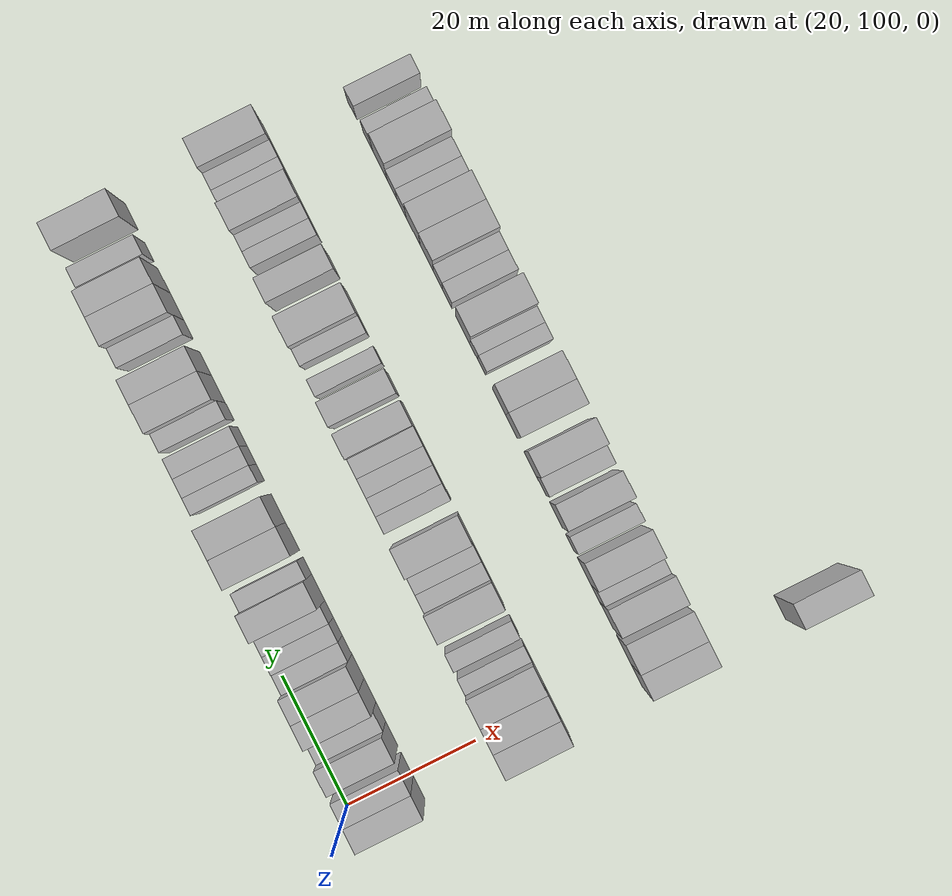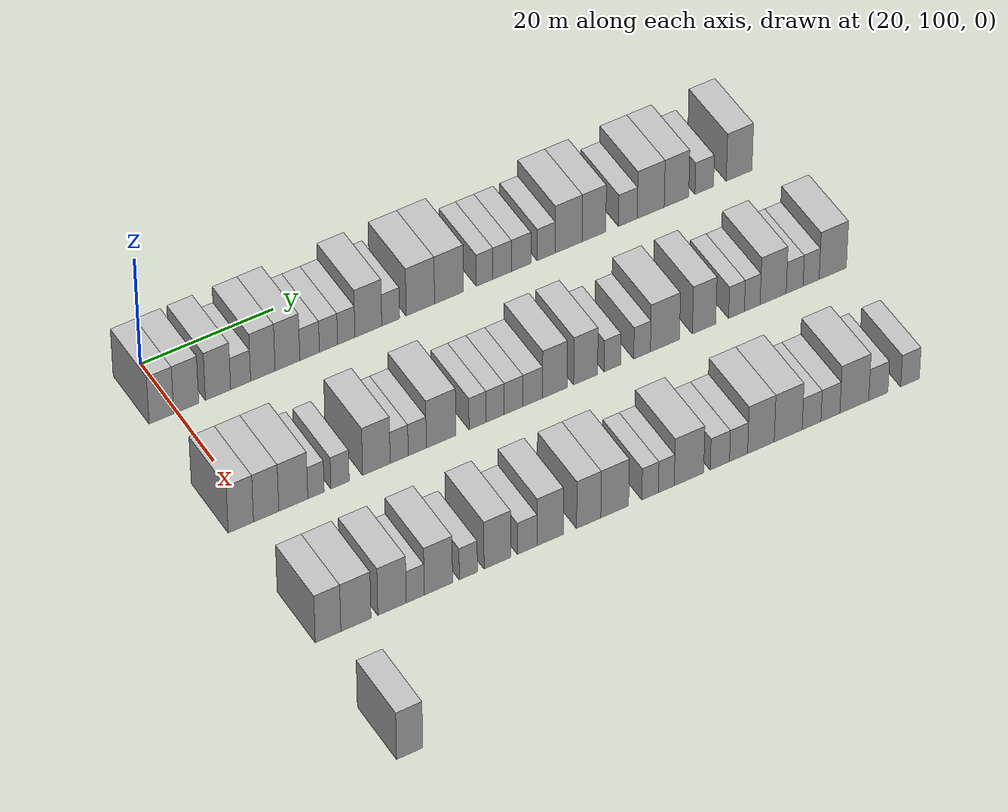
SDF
<sdf version="1.6">
 <world name="default">
  <model name="building_125">
   <static>1</static>
   <pose>25.0000 97.6541 0 0.000000 0.000000 0.000000</pose>
   <link name="link">
    <pose>0 0 4.50 0 0 0</pose>
    <collision name="collision"><geometry><box><size>10.0000 3.6621 9.0000</size></box></geometry></collision>
    <visual name="visual">
     <cast_shadows>0</cast_shadows>
     <geometry><box><size>10.0000 3.6621 9.0000</size></box></geometry>
     <material>
      <script>
       <uri>model://HANNAS_wall/materials/scripts</uri>
       <uri>model://HANNAS_wall/materials/textures</uri>
       <name>vrc/HANNAS_wall</name>
      </script>
     </material>
    </visual>
   </link>
  </model>
  <model name="building_126">
   <static>1</static>
   <pose>25.0000 101.3525 0 0.000000 0.000000 0.000000</pose>
   <link name="link">
    <pose>0 0 4.50 0 0 0</pose>
    <collision name="collision"><geometry><box><size>10.0000 3.7347 9.0000</size></box></geometry></collision>
    <visual name="visual">
     <cast_shadows>0</cast_shadows>
     <geometry><box><size>10.0000 3.7347 9.0000</size></box></geometry>
     <material>
      <script>
       <uri>model://HANNAS_wall/materials/scripts</uri>
       <uri>model://HANNAS_wall/materials/textures</uri>
       <name>vrc/HANNAS_wall</name>
      </script>
     </material>
    </visual>
   </link>
  </model>
  <model name="building_127">
   <static>1</static>
   <pose>25.0000 106.1117 0 0.000000 0.000000 0.000000</pose>
   <link name="link">
    <pose>0 0 4.50 0 0 0</pose>
    <collision name="collision"><geometry><box><size>10.0000 3.7838 9.0000</size></box></geometry></collision>
    <visual name="visual">
     <cast_shadows>0</cast_shadows>
     <geometry><box><size>10.0000 3.7838 9.0000</size></box></geometry>
     <material>
      <script>
       <uri>model://HANNAS_wall/materials/scripts</uri>
       <uri>model://HANNAS_wall/materials/textures</uri>
       <name>vrc/HANNAS_wall</name>
      </script>
     </material>
    </visual>
   </link>
  </model>
  <model name="building_128">
   <static>1</static>
   <pose>25.0000 109.4991 0 0.000000 0.000000 0.000000</pose>
   <link name="link">
    <pose>0 0 3.00 0 0 0</pose>
    <collision name="collision"><geometry><box><size>10.0000 2.9910 6.0000</size></box></geometry></collision>
    <visual name="visual">
     <cast_shadows>0</cast_shadows>
     <geometry><box><size>10.0000 2.9910 6.0000</size></box></geometry>
     <material>
      <script>
       <uri>model://HANNAS_wall/materials/scripts</uri>
       <uri>model://HANNAS_wall/materials/textures</uri>
       <name>vrc/HANNAS_wall</name>
      </script>
     </material>
    </visual>
   </link>
  </model>
  <model name="building_129">
   <static>1</static>
   <pose>25.0000 112.8402 0 0.000000 0.000000 0.000000</pose>
   <link name="link">
    <pose>0 0 4.50 0 0 0</pose>
    <collision name="collision"><geometry><box><size>10.0000 3.6911 9.0000</size></box></geometry></collision>
    <visual name="visual">
     <cast_shadows>0</cast_shadows>
     <geometry><box><size>10.0000 3.6911 9.0000</size></box></geometry>
     <material>
      <script>
       <uri>model://HANNAS_wall/materials/scripts</uri>
       <uri>model://HANNAS_wall/materials/textures</uri>
       <name>vrc/HANNAS_wall</name>
      </script>
     </material>
    </visual>
   </link>
  </model>
  <model name="building_130">
   <static>1</static>
   <pose>25.0000 116.5511 0 0.000000 0.000000 0.000000</pose>
   <link name="link">
    <pose>0 0 4.50 0 0 0</pose>
    <collision name="collision"><geometry><box><size>10.0000 3.7307 9.0000</size></box></geometry></collision>
    <visual name="visual">
     <cast_shadows>0</cast_shadows>
     <geometry><box><size>10.0000 3.7307 9.0000</size></box></geometry>
     <material>
      <script>
       <uri>model://HANNAS_wall/materials/scripts</uri>
       <uri>model://HANNAS_wall/materials/textures</uri>
       <name>vrc/HANNAS_wall</name>
      </script>
     </material>
    </visual>
   </link>
  </model>
  <model name="building_131">
   <static>1</static>
   <pose>25.0000 119.8964 0 0.000000 0.000000 0.000000</pose>
   <link name="link">
    <pose>0 0 3.00 0 0 0</pose>
    <collision name="collision"><geometry><box><size>10.0000 2.9599 6.0000</size></box></geometry></collision>
    <visual name="visual">
     <cast_shadows>0</cast_shadows>
     <geometry><box><size>10.0000 2.9599 6.0000</size></box></geometry>
     <material>
      <script>
       <uri>model://HANNAS_wall/materials/scripts</uri>
       <uri>model://HANNAS_wall/materials/textures</uri>
       <name>vrc/HANNAS_wall</name>
      </script>
     </material>
    </visual>
   </link>
  </model>
  <model name="building_132">
   <static>1</static>
   <pose>25.0000 122.7570 0 0.000000 0.000000 0.000000</pose>
   <link name="link">
    <pose>0 0 3.00 0 0 0</pose>
    <collision name="collision"><geometry><box><size>10.0000 2.7612 6.0000</size></box></geometry></collision>
    <visual name="visual">
     <cast_shadows>0</cast_shadows>
     <geometry><box><size>10.0000 2.7612 6.0000</size></box></geometry>
     <material>
      <script>
       <uri>model://HANNAS_wall/materials/scripts</uri>
       <uri>model://HANNAS_wall/materials/textures</uri>
       <name>vrc/HANNAS_wall</name>
      </script>
     </material>
    </visual>
   </link>
  </model>
  <model name="building_133">
   <static>1</static>
   <pose>25.0000 125.4511 0 0.000000 0.000000 0.000000</pose>
   <link name="link">
    <pose>0 0 3.00 0 0 0</pose>
    <collision name="collision"><geometry><box><size>10.0000 2.6270 6.0000</size></box></geometry></collision>
    <visual name="visual">
     <cast_shadows>0</cast_shadows>
     <geometry><box><size>10.0000 2.6270 6.0000</size></box></geometry>
     <material>
      <script>
       <uri>model://HANNAS_wall/materials/scripts</uri>
       <uri>model://HANNAS_wall/materials/textures</uri>
       <name>vrc/HANNAS_wall</name>
      </script>
     </material>
    </visual>
   </link>
  </model>
  <model name="building_134">
   <static>1</static>
   <pose>25.0000 128.8019 0 0.000000 0.000000 0.000000</pose>
   <link name="link">
    <pose>0 0 4.50 0 0 0</pose>
    <collision name="collision"><geometry><box><size>10.0000 4.0746 9.0000</size></box></geometry></collision>
    <visual name="visual">
     <cast_shadows>0</cast_shadows>
     <geometry><box><size>10.0000 4.0746 9.0000</size></box></geometry>
     <material>
      <script>
       <uri>model://HANNAS_wall/materials/scripts</uri>
       <uri>model://HANNAS_wall/materials/textures</uri>
       <name>vrc/HANNAS_wall</name>
      </script>
     </material>
    </visual>
   </link>
  </model>
  <model name="building_135">
   <static>1</static>
   <pose>25.0000 132.2038 0 0.000000 0.000000 0.000000</pose>
   <link name="link">
    <pose>0 0 3.00 0 0 0</pose>
    <collision name="collision"><geometry><box><size>10.0000 2.7292 6.0000</size></box></geometry></collision>
    <visual name="visual">
     <cast_shadows>0</cast_shadows>
     <geometry><box><size>10.0000 2.7292 6.0000</size></box></geometry>
     <material>
      <script>
       <uri>model://HANNAS_wall/materials/scripts</uri>
       <uri>model://HANNAS_wall/materials/textures</uri>
       <name>vrc/HANNAS_wall</name>
      </script>
     </material>
    </visual>
   </link>
  </model>
  <model name="building_136">
   <static>1</static>
   <pose>25.0000 136.7423 0 0.000000 0.000000 0.000000</pose>
   <link name="link">
    <pose>0 0 4.50 0 0 0</pose>
    <collision name="collision"><geometry><box><size>10.0000 4.3480 9.0000</size></box></geometry></collision>
    <visual name="visual">
     <cast_shadows>0</cast_shadows>
     <geometry><box><size>10.0000 4.3480 9.0000</size></box></geometry>
     <material>
      <script>
       <uri>model://HANNAS_wall/materials/scripts</uri>
       <uri>model://HANNAS_wall/materials/textures</uri>
       <name>vrc/HANNAS_wall</name>
      </script>
     </material>
    </visual>
   </link>
  </model>
  <model name="building_137">
   <static>1</static>
   <pose>25.0000 141.1375 0 0.000000 0.000000 0.000000</pose>
   <link name="link">
    <pose>0 0 4.50 0 0 0</pose>
    <collision name="collision"><geometry><box><size>10.0000 4.4422 9.0000</size></box></geometry></collision>
    <visual name="visual">
     <cast_shadows>0</cast_shadows>
     <geometry><box><size>10.0000 4.4422 9.0000</size></box></geometry>
     <material>
      <script>
       <uri>model://HANNAS_wall/materials/scripts</uri>
       <uri>model://HANNAS_wall/materials/textures</uri>
       <name>vrc/HANNAS_wall</name>
      </script>
     </material>
    </visual>
   </link>
  </model>
  <model name="building_138">
   <static>1</static>
   <pose>25.0000 146.6398 0 0.000000 0.000000 0.000000</pose>
   <link name="link">
    <pose>0 0 3.00 0 0 0</pose>
    <collision name="collision"><geometry><box><size>10.0000 2.5623 6.0000</size></box></geometry></collision>
    <visual name="visual">
     <cast_shadows>0</cast_shadows>
     <geometry><box><size>10.0000 2.5623 6.0000</size></box></geometry>
     <material>
      <script>
       <uri>model://HANNAS_wall/materials/scripts</uri>
       <uri>model://HANNAS_wall/materials/textures</uri>
       <name>vrc/HANNAS_wall</name>
      </script>
     </material>
    </visual>
   </link>
  </model>
  <model name="building_139">
   <static>1</static>
   <pose>25.0000 149.3485 0 0.000000 0.000000 0.000000</pose>
   <link name="link">
    <pose>0 0 3.00 0 0 0</pose>
    <collision name="collision"><geometry><box><size>10.0000 2.8551 6.0000</size></box></geometry></collision>
    <visual name="visual">
     <cast_shadows>0</cast_shadows>
     <geometry><box><size>10.0000 2.8551 6.0000</size></box></geometry>
     <material>
      <script>
       <uri>model://HANNAS_wall/materials/scripts</uri>
       <uri>model://HANNAS_wall/materials/textures</uri>
       <name>vrc/HANNAS_wall</name>
      </script>
     </material>
    </visual>
   </link>
  </model>
  <model name="building_140">
   <static>1</static>
   <pose>25.0000 152.2746 0 0.000000 0.000000 0.000000</pose>
   <link name="link">
    <pose>0 0 3.00 0 0 0</pose>
    <collision name="collision"><geometry><box><size>10.0000 2.9971 6.0000</size></box></geometry></collision>
    <visual name="visual">
     <cast_shadows>0</cast_shadows>
     <geometry><box><size>10.0000 2.9971 6.0000</size></box></geometry>
     <material>
      <script>
       <uri>model://HANNAS_wall/materials/scripts</uri>
       <uri>model://HANNAS_wall/materials/textures</uri>
       <name>vrc/HANNAS_wall</name>
      </script>
     </material>
    </visual>
   </link>
  </model>
  <model name="building_141">
   <static>1</static>
   <pose>25.0000 156.1682 0 0.000000 0.000000 0.000000</pose>
   <link name="link">
    <pose>0 0 3.00 0 0 0</pose>
    <collision name="collision"><geometry><box><size>10.0000 2.7902 6.0000</size></box></geometry></collision>
    <visual name="visual">
     <cast_shadows>0</cast_shadows>
     <geometry><box><size>10.0000 2.7902 6.0000</size></box></geometry>
     <material>
      <script>
       <uri>model://HANNAS_wall/materials/scripts</uri>
       <uri>model://HANNAS_wall/materials/textures</uri>
       <name>vrc/HANNAS_wall</name>
      </script>
     </material>
    </visual>
   </link>
  </model>
  <model name="building_142">
   <static>1</static>
   <pose>25.0000 159.6718 0 0.000000 0.000000 0.000000</pose>
   <link name="link">
    <pose>0 0 4.50 0 0 0</pose>
    <collision name="collision"><geometry><box><size>10.0000 4.2171 9.0000</size></box></geometry></collision>
    <visual name="visual">
     <cast_shadows>0</cast_shadows>
     <geometry><box><size>10.0000 4.2171 9.0000</size></box></geometry>
     <material>
      <script>
       <uri>model://HANNAS_wall/materials/scripts</uri>
       <uri>model://HANNAS_wall/materials/textures</uri>
       <name>vrc/HANNAS_wall</name>
      </script>
     </material>
    </visual>
   </link>
  </model>
  <model name="building_143">
   <static>1</static>
   <pose>25.0000 163.6159 0 0.000000 0.000000 0.000000</pose>
   <link name="link">
    <pose>0 0 4.50 0 0 0</pose>
    <collision name="collision"><geometry><box><size>10.0000 3.6709 9.0000</size></box></geometry></collision>
    <visual name="visual">
     <cast_shadows>0</cast_shadows>
     <geometry><box><size>10.0000 3.6709 9.0000</size></box></geometry>
     <material>
      <script>
       <uri>model://HANNAS_wall/materials/scripts</uri>
       <uri>model://HANNAS_wall/materials/textures</uri>
       <name>vrc/HANNAS_wall</name>
      </script>
     </material>
    </visual>
   </link>
  </model>
  <model name="building_144">
   <static>1</static>
   <pose>25.0000 168.9212 0 0.000000 0.000000 0.000000</pose>
   <link name="link">
    <pose>0 0 3.00 0 0 0</pose>
    <collision name="collision"><geometry><box><size>10.0000 2.9397 6.0000</size></box></geometry></collision>
    <visual name="visual">
     <cast_shadows>0</cast_shadows>
     <geometry><box><size>10.0000 2.9397 6.0000</size></box></geometry>
     <material>
      <script>
       <uri>model://HANNAS_wall/materials/scripts</uri>
       <uri>model://HANNAS_wall/materials/textures</uri>
       <name>vrc/HANNAS_wall</name>
      </script>
     </material>
    </visual>
   </link>
  </model>
  <model name="building_145">
   <static>1</static>
   <pose>25.0000 172.5089 0 0.000000 0.000000 0.000000</pose>
   <link name="link">
    <pose>0 0 4.50 0 0 0</pose>
    <collision name="collision"><geometry><box><size>10.0000 4.2358 9.0000</size></box></geometry></collision>
    <visual name="visual">
     <cast_shadows>0</cast_shadows>
     <geometry><box><size>10.0000 4.2358 9.0000</size></box></geometry>
     <material>
      <script>
       <uri>model://HANNAS_wall/materials/scripts</uri>
       <uri>model://HANNAS_wall/materials/textures</uri>
       <name>vrc/HANNAS_wall</name>
      </script>
     </material>
    </visual>
   </link>
  </model>
  <model name="building_146">
   <static>1</static>
   <pose>25.0000 176.5602 0 0.000000 0.000000 0.000000</pose>
   <link name="link">
    <pose>0 0 4.50 0 0 0</pose>
    <collision name="collision"><geometry><box><size>10.0000 3.8667 9.0000</size></box></geometry></collision>
    <visual name="visual">
     <cast_shadows>0</cast_shadows>
     <geometry><box><size>10.0000 3.8667 9.0000</size></box></geometry>
     <material>
      <script>
       <uri>model://HANNAS_wall/materials/scripts</uri>
       <uri>model://HANNAS_wall/materials/textures</uri>
       <name>vrc/HANNAS_wall</name>
      </script>
     </material>
    </visual>
   </link>
  </model>
  <model name="building_147">
   <static>1</static>
   <pose>25.0000 180.9639 0 0.000000 0.000000 0.000000</pose>
   <link name="link">
    <pose>0 0 3.00 0 0 0</pose>
    <collision name="collision"><geometry><box><size>10.0000 2.9408 6.0000</size></box></geometry></collision>
    <visual name="visual">
     <cast_shadows>0</cast_shadows>
     <geometry><box><size>10.0000 2.9408 6.0000</size></box></geometry>
     <material>
      <script>
       <uri>model://HANNAS_wall/materials/scripts</uri>
       <uri>model://HANNAS_wall/materials/textures</uri>
       <name>vrc/HANNAS_wall</name>
      </script>
     </material>
    </visual>
   </link>
  </model>
  <model name="building_148">
   <static>1</static>
   <pose>25.0000 186.4819 0 0.000000 0.000000 0.000000</pose>
   <link name="link">
    <pose>0 0 4.50 0 0 0</pose>
    <collision name="collision"><geometry><box><size>10.0000 4.0953 9.0000</size></box></geometry></collision>
    <visual name="visual">
     <cast_shadows>0</cast_shadows>
     <geometry><box><size>10.0000 4.0953 9.0000</size></box></geometry>
     <material>
      <script>
       <uri>model://HANNAS_wall/materials/scripts</uri>
       <uri>model://HANNAS_wall/materials/textures</uri>
       <name>vrc/HANNAS_wall</name>
      </script>
     </material>
    </visual>
   </link>
  </model>
  <model name="building_322">
   <static>1</static>
   <pose>47.0000 97.4801 0 0.000000 0.000000 0.000000</pose>
   <link name="link">
    <pose>0 0 4.50 0 0 0</pose>
    <collision name="collision"><geometry><box><size>10.0000 3.7244 9.0000</size></box></geometry></collision>
    <visual name="visual">
     <cast_shadows>0</cast_shadows>
     <geometry><box><size>10.0000 3.7244 9.0000</size></box></geometry>
     <material>
      <script>
       <uri>model://HANNAS_wall/materials/scripts</uri>
       <uri>model://HANNAS_wall/materials/textures</uri>
       <name>vrc/HANNAS_wall</name>
      </script>
     </material>
    </visual>
   </link>
  </model>
  <model name="building_323">
   <static>1</static>
   <pose>47.0000 101.2134 0 0.000000 0.000000 0.000000</pose>
   <link name="link">
    <pose>0 0 4.50 0 0 0</pose>
    <collision name="collision"><geometry><box><size>10.0000 3.7421 9.0000</size></box></geometry></collision>
    <visual name="visual">
     <cast_shadows>0</cast_shadows>
     <geometry><box><size>10.0000 3.7421 9.0000</size></box></geometry>
     <material>
      <script>
       <uri>model://HANNAS_wall/materials/scripts</uri>
       <uri>model://HANNAS_wall/materials/textures</uri>
       <name>vrc/HANNAS_wall</name>
      </script>
     </material>
    </visual>
   </link>
  </model>
  <model name="building_324">
   <static>1</static>
   <pose>47.0000 105.2328 0 0.000000 0.000000 0.000000</pose>
   <link name="link">
    <pose>0 0 4.50 0 0 0</pose>
    <collision name="collision"><geometry><box><size>10.0000 4.2967 9.0000</size></box></geometry></collision>
    <visual name="visual">
     <cast_shadows>0</cast_shadows>
     <geometry><box><size>10.0000 4.2967 9.0000</size></box></geometry>
     <material>
      <script>
       <uri>model://HANNAS_wall/materials/scripts</uri>
       <uri>model://HANNAS_wall/materials/textures</uri>
       <name>vrc/HANNAS_wall</name>
      </script>
     </material>
    </visual>
   </link>
  </model>
  <model name="building_325">
   <static>1</static>
   <pose>47.0000 108.5959 0 0.000000 0.000000 0.000000</pose>
   <link name="link">
    <pose>0 0 3.00 0 0 0</pose>
    <collision name="collision"><geometry><box><size>10.0000 2.4295 6.0000</size></box></geometry></collision>
    <visual name="visual">
     <cast_shadows>0</cast_shadows>
     <geometry><box><size>10.0000 2.4295 6.0000</size></box></geometry>
     <material>
      <script>
       <uri>model://HANNAS_wall/materials/scripts</uri>
       <uri>model://HANNAS_wall/materials/textures</uri>
       <name>vrc/HANNAS_wall</name>
      </script>
     </material>
    </visual>
   </link>
  </model>
  <model name="building_326">
   <static>1</static>
   <pose>47.0000 112.1719 0 0.000000 0.000000 0.000000</pose>
   <link name="link">
    <pose>0 0 3.00 0 0 0</pose>
    <collision name="collision"><geometry><box><size>10.0000 2.7225 6.0000</size></box></geometry></collision>
    <visual name="visual">
     <cast_shadows>0</cast_shadows>
     <geometry><box><size>10.0000 2.7225 6.0000</size></box></geometry>
     <material>
      <script>
       <uri>model://HANNAS_wall/materials/scripts</uri>
       <uri>model://HANNAS_wall/materials/textures</uri>
       <name>vrc/HANNAS_wall</name>
      </script>
     </material>
    </visual>
   </link>
  </model>
  <model name="building_327">
   <static>1</static>
   <pose>47.0000 117.5928 0 0.000000 0.000000 0.000000</pose>
   <link name="link">
    <pose>0 0 4.50 0 0 0</pose>
    <collision name="collision"><geometry><box><size>10.0000 4.1192 9.0000</size></box></geometry></collision>
    <visual name="visual">
     <cast_shadows>0</cast_shadows>
     <geometry><box><size>10.0000 4.1192 9.0000</size></box></geometry>
     <material>
      <script>
       <uri>model://HANNAS_wall/materials/scripts</uri>
       <uri>model://HANNAS_wall/materials/textures</uri>
       <name>vrc/HANNAS_wall</name>
      </script>
     </material>
    </visual>
   </link>
  </model>
  <model name="building_328">
   <static>1</static>
   <pose>47.0000 121.0039 0 0.000000 0.000000 0.000000</pose>
   <link name="link">
    <pose>0 0 3.00 0 0 0</pose>
    <collision name="collision"><geometry><box><size>10.0000 2.7030 6.0000</size></box></geometry></collision>
    <visual name="visual">
     <cast_shadows>0</cast_shadows>
     <geometry><box><size>10.0000 2.7030 6.0000</size></box></geometry>
     <material>
      <script>
       <uri>model://HANNAS_wall/materials/scripts</uri>
       <uri>model://HANNAS_wall/materials/textures</uri>
       <name>vrc/HANNAS_wall</name>
      </script>
     </material>
    </visual>
   </link>
  </model>
  <model name="building_329">
   <static>1</static>
   <pose>47.0000 123.7179 0 0.000000 0.000000 0.000000</pose>
   <link name="link">
    <pose>0 0 3.00 0 0 0</pose>
    <collision name="collision"><geometry><box><size>10.0000 2.7250 6.0000</size></box></geometry></collision>
    <visual name="visual">
     <cast_shadows>0</cast_shadows>
     <geometry><box><size>10.0000 2.7250 6.0000</size></box></geometry>
     <material>
      <script>
       <uri>model://HANNAS_wall/materials/scripts</uri>
       <uri>model://HANNAS_wall/materials/textures</uri>
       <name>vrc/HANNAS_wall</name>
      </script>
     </material>
    </visual>
   </link>
  </model>
  <model name="building_330">
   <static>1</static>
   <pose>47.0000 127.2984 0 0.000000 0.000000 0.000000</pose>
   <link name="link">
    <pose>0 0 4.50 0 0 0</pose>
    <collision name="collision"><geometry><box><size>10.0000 4.4359 9.0000</size></box></geometry></collision>
    <visual name="visual">
     <cast_shadows>0</cast_shadows>
     <geometry><box><size>10.0000 4.4359 9.0000</size></box></geometry>
     <material>
      <script>
       <uri>model://HANNAS_wall/materials/scripts</uri>
       <uri>model://HANNAS_wall/materials/textures</uri>
       <name>vrc/HANNAS_wall</name>
      </script>
     </material>
    </visual>
   </link>
  </model>
  <model name="building_331">
   <static>1</static>
   <pose>47.0000 132.8037 0 0.000000 0.000000 0.000000</pose>
   <link name="link">
    <pose>0 0 3.00 0 0 0</pose>
    <collision name="collision"><geometry><box><size>10.0000 2.5748 6.0000</size></box></geometry></collision>
    <visual name="visual">
     <cast_shadows>0</cast_shadows>
     <geometry><box><size>10.0000 2.5748 6.0000</size></box></geometry>
     <material>
      <script>
       <uri>model://HANNAS_wall/materials/scripts</uri>
       <uri>model://HANNAS_wall/materials/textures</uri>
       <name>vrc/HANNAS_wall</name>
      </script>
     </material>
    </visual>
   </link>
  </model>
  <model name="building_332">
   <static>1</static>
   <pose>47.0000 135.4750 0 0.000000 0.000000 0.000000</pose>
   <link name="link">
    <pose>0 0 3.00 0 0 0</pose>
    <collision name="collision"><geometry><box><size>10.0000 2.7679 6.0000</size></box></geometry></collision>
    <visual name="visual">
     <cast_shadows>0</cast_shadows>
     <geometry><box><size>10.0000 2.7679 6.0000</size></box></geometry>
     <material>
      <script>
       <uri>model://HANNAS_wall/materials/scripts</uri>
       <uri>model://HANNAS_wall/materials/textures</uri>
       <name>vrc/HANNAS_wall</name>
      </script>
     </material>
    </visual>
   </link>
  </model>
  <model name="building_333">
   <static>1</static>
   <pose>47.0000 138.2911 0 0.000000 0.000000 0.000000</pose>
   <link name="link">
    <pose>0 0 3.00 0 0 0</pose>
    <collision name="collision"><geometry><box><size>10.0000 2.8643 6.0000</size></box></geometry></collision>
    <visual name="visual">
     <cast_shadows>0</cast_shadows>
     <geometry><box><size>10.0000 2.8643 6.0000</size></box></geometry>
     <material>
      <script>
       <uri>model://HANNAS_wall/materials/scripts</uri>
       <uri>model://HANNAS_wall/materials/textures</uri>
       <name>vrc/HANNAS_wall</name>
      </script>
     </material>
    </visual>
   </link>
  </model>
  <model name="building_334">
   <static>1</static>
   <pose>47.0000 141.2081 0 0.000000 0.000000 0.000000</pose>
   <link name="link">
    <pose>0 0 3.00 0 0 0</pose>
    <collision name="collision"><geometry><box><size>10.0000 2.9696 6.0000</size></box></geometry></collision>
    <visual name="visual">
     <cast_shadows>0</cast_shadows>
     <geometry><box><size>10.0000 2.9696 6.0000</size></box></geometry>
     <material>
      <script>
       <uri>model://HANNAS_wall/materials/scripts</uri>
       <uri>model://HANNAS_wall/materials/textures</uri>
       <name>vrc/HANNAS_wall</name>
      </script>
     </material>
    </visual>
   </link>
  </model>
  <model name="building_335">
   <static>1</static>
   <pose>47.0000 144.5632 0 0.000000 0.000000 0.000000</pose>
   <link name="link">
    <pose>0 0 4.50 0 0 0</pose>
    <collision name="collision"><geometry><box><size>10.0000 3.7406 9.0000</size></box></geometry></collision>
    <visual name="visual">
     <cast_shadows>0</cast_shadows>
     <geometry><box><size>10.0000 3.7406 9.0000</size></box></geometry>
     <material>
      <script>
       <uri>model://HANNAS_wall/materials/scripts</uri>
       <uri>model://HANNAS_wall/materials/textures</uri>
       <name>vrc/HANNAS_wall</name>
      </script>
     </material>
    </visual>
   </link>
  </model>
  <model name="building_336">
   <static>1</static>
   <pose>47.0000 149.2613 0 0.000000 0.000000 0.000000</pose>
   <link name="link">
    <pose>0 0 4.50 0 0 0</pose>
    <collision name="collision"><geometry><box><size>10.0000 3.6557 9.0000</size></box></geometry></collision>
    <visual name="visual">
     <cast_shadows>0</cast_shadows>
     <geometry><box><size>10.0000 3.6557 9.0000</size></box></geometry>
     <material>
      <script>
       <uri>model://HANNAS_wall/materials/scripts</uri>
       <uri>model://HANNAS_wall/materials/textures</uri>
       <name>vrc/HANNAS_wall</name>
      </script>
     </material>
    </visual>
   </link>
  </model>
  <model name="building_337">
   <static>1</static>
   <pose>47.0000 153.3697 0 0.000000 0.000000 0.000000</pose>
   <link name="link">
    <pose>0 0 3.00 0 0 0</pose>
    <collision name="collision"><geometry><box><size>10.0000 2.5610 6.0000</size></box></geometry></collision>
    <visual name="visual">
     <cast_shadows>0</cast_shadows>
     <geometry><box><size>10.0000 2.5610 6.0000</size></box></geometry>
     <material>
      <script>
       <uri>model://HANNAS_wall/materials/scripts</uri>
       <uri>model://HANNAS_wall/materials/textures</uri>
       <name>vrc/HANNAS_wall</name>
      </script>
     </material>
    </visual>
   </link>
  </model>
  <model name="building_338">
   <static>1</static>
   <pose>47.0000 157.9373 0 0.000000 0.000000 0.000000</pose>
   <link name="link">
    <pose>0 0 3.00 0 0 0</pose>
    <collision name="collision"><geometry><box><size>10.0000 2.5742 6.0000</size></box></geometry></collision>
    <visual name="visual">
     <cast_shadows>0</cast_shadows>
     <geometry><box><size>10.0000 2.5742 6.0000</size></box></geometry>
     <material>
      <script>
       <uri>model://HANNAS_wall/materials/scripts</uri>
       <uri>model://HANNAS_wall/materials/textures</uri>
       <name>vrc/HANNAS_wall</name>
      </script>
     </material>
    </visual>
   </link>
  </model>
  <model name="building_339">
   <static>1</static>
   <pose>47.0000 161.4658 0 0.000000 0.000000 0.000000</pose>
   <link name="link">
    <pose>0 0 4.50 0 0 0</pose>
    <collision name="collision"><geometry><box><size>10.0000 4.4826 9.0000</size></box></geometry></collision>
    <visual name="visual">
     <cast_shadows>0</cast_shadows>
     <geometry><box><size>10.0000 4.4826 9.0000</size></box></geometry>
     <material>
      <script>
       <uri>model://HANNAS_wall/materials/scripts</uri>
       <uri>model://HANNAS_wall/materials/textures</uri>
       <name>vrc/HANNAS_wall</name>
      </script>
     </material>
    </visual>
   </link>
  </model>
  <model name="building_340">
   <static>1</static>
   <pose>47.0000 167.5269 0 0.000000 0.000000 0.000000</pose>
   <link name="link">
    <pose>0 0 4.50 0 0 0</pose>
    <collision name="collision"><geometry><box><size>10.0000 3.6396 9.0000</size></box></geometry></collision>
    <visual name="visual">
     <cast_shadows>0</cast_shadows>
     <geometry><box><size>10.0000 3.6396 9.0000</size></box></geometry>
     <material>
      <script>
       <uri>model://HANNAS_wall/materials/scripts</uri>
       <uri>model://HANNAS_wall/materials/textures</uri>
       <name>vrc/HANNAS_wall</name>
      </script>
     </material>
    </visual>
   </link>
  </model>
  <model name="building_341">
   <static>1</static>
   <pose>47.0000 172.5779 0 0.000000 0.000000 0.000000</pose>
   <link name="link">
    <pose>0 0 3.00 0 0 0</pose>
    <collision name="collision"><geometry><box><size>10.0000 2.4624 6.0000</size></box></geometry></collision>
    <visual name="visual">
     <cast_shadows>0</cast_shadows>
     <geometry><box><size>10.0000 2.4624 6.0000</size></box></geometry>
     <material>
      <script>
       <uri>model://HANNAS_wall/materials/scripts</uri>
       <uri>model://HANNAS_wall/materials/textures</uri>
       <name>vrc/HANNAS_wall</name>
      </script>
     </material>
    </visual>
   </link>
  </model>
  <model name="building_342">
   <static>1</static>
   <pose>47.0000 175.0338 0 0.000000 0.000000 0.000000</pose>
   <link name="link">
    <pose>0 0 3.00 0 0 0</pose>
    <collision name="collision"><geometry><box><size>10.0000 2.4494 6.0000</size></box></geometry></collision>
    <visual name="visual">
     <cast_shadows>0</cast_shadows>
     <geometry><box><size>10.0000 2.4494 6.0000</size></box></geometry>
     <material>
      <script>
       <uri>model://HANNAS_wall/materials/scripts</uri>
       <uri>model://HANNAS_wall/materials/textures</uri>
       <name>vrc/HANNAS_wall</name>
      </script>
     </material>
    </visual>
   </link>
  </model>
  <model name="building_343">
   <static>1</static>
   <pose>47.0000 178.3016 0 0.000000 0.000000 0.000000</pose>
   <link name="link">
    <pose>0 0 4.50 0 0 0</pose>
    <collision name="collision"><geometry><box><size>10.0000 4.0861 9.0000</size></box></geometry></collision>
    <visual name="visual">
     <cast_shadows>0</cast_shadows>
     <geometry><box><size>10.0000 4.0861 9.0000</size></box></geometry>
     <material>
      <script>
       <uri>model://HANNAS_wall/materials/scripts</uri>
       <uri>model://HANNAS_wall/materials/textures</uri>
       <name>vrc/HANNAS_wall</name>
      </script>
     </material>
    </visual>
   </link>
  </model>
  <model name="building_344">
   <static>1</static>
   <pose>47.0000 181.6689 0 0.000000 0.000000 0.000000</pose>
   <link name="link">
    <pose>0 0 3.00 0 0 0</pose>
    <collision name="collision"><geometry><box><size>10.0000 2.6485 6.0000</size></box></geometry></collision>
    <visual name="visual">
     <cast_shadows>0</cast_shadows>
     <geometry><box><size>10.0000 2.6485 6.0000</size></box></geometry>
     <material>
      <script>
       <uri>model://HANNAS_wall/materials/scripts</uri>
       <uri>model://HANNAS_wall/materials/textures</uri>
       <name>vrc/HANNAS_wall</name>
      </script>
     </material>
    </visual>
   </link>
  </model>
  <model name="building_345">
   <static>1</static>
   <pose>47.0000 184.2580 0 0.000000 0.000000 0.000000</pose>
   <link name="link">
    <pose>0 0 3.00 0 0 0</pose>
    <collision name="collision"><geometry><box><size>10.0000 2.5297 6.0000</size></box></geometry></collision>
    <visual name="visual">
     <cast_shadows>0</cast_shadows>
     <geometry><box><size>10.0000 2.5297 6.0000</size></box></geometry>
     <material>
      <script>
       <uri>model://HANNAS_wall/materials/scripts</uri>
       <uri>model://HANNAS_wall/materials/textures</uri>
       <name>vrc/HANNAS_wall</name>
      </script>
     </material>
    </visual>
   </link>
  </model>
  <model name="building_346">
   <static>1</static>
   <pose>47.0000 187.6669 0 0.000000 0.000000 0.000000</pose>
   <link name="link">
    <pose>0 0 4.50 0 0 0</pose>
    <collision name="collision"><geometry><box><size>10.0000 4.2880 9.0000</size></box></geometry></collision>
    <visual name="visual">
     <cast_shadows>0</cast_shadows>
     <geometry><box><size>10.0000 4.2880 9.0000</size></box></geometry>
     <material>
      <script>
       <uri>model://HANNAS_wall/materials/scripts</uri>
       <uri>model://HANNAS_wall/materials/textures</uri>
       <name>vrc/HANNAS_wall</name>
      </script>
     </material>
    </visual>
   </link>
  </model>
  <model name="building_510">
   <static>1</static>
   <pose>69.0000 98.0909 0 0.000000 0.000000 0.000000</pose>
   <link name="link">
    <pose>0 0 4.50 0 0 0</pose>
    <collision name="collision"><geometry><box><size>10.0000 3.7430 9.0000</size></box></geometry></collision>
    <visual name="visual">
     <cast_shadows>0</cast_shadows>
     <geometry><box><size>10.0000 3.7430 9.0000</size></box></geometry>
     <material>
      <script>
       <uri>model://HANNAS_wall/materials/scripts</uri>
       <uri>model://HANNAS_wall/materials/textures</uri>
       <name>vrc/HANNAS_wall</name>
      </script>
     </material>
    </visual>
   </link>
  </model>
  <model name="building_511">
   <static>1</static>
   <pose>69.0000 102.1666 0 0.000000 0.000000 0.000000</pose>
   <link name="link">
    <pose>0 0 4.50 0 0 0</pose>
    <collision name="collision"><geometry><box><size>10.0000 4.4084 9.0000</size></box></geometry></collision>
    <visual name="visual">
     <cast_shadows>0</cast_shadows>
     <geometry><box><size>10.0000 4.4084 9.0000</size></box></geometry>
     <material>
      <script>
       <uri>model://HANNAS_wall/materials/scripts</uri>
       <uri>model://HANNAS_wall/materials/textures</uri>
       <name>vrc/HANNAS_wall</name>
      </script>
     </material>
    </visual>
   </link>
  </model>
  <model name="building_512">
   <static>1</static>
   <pose>69.0000 107.4595 0 0.000000 0.000000 0.000000</pose>
   <link name="link">
    <pose>0 0 4.50 0 0 0</pose>
    <collision name="collision"><geometry><box><size>10.0000 4.1776 9.0000</size></box></geometry></collision>
    <visual name="visual">
     <cast_shadows>0</cast_shadows>
     <geometry><box><size>10.0000 4.1776 9.0000</size></box></geometry>
     <material>
      <script>
       <uri>model://HANNAS_wall/materials/scripts</uri>
       <uri>model://HANNAS_wall/materials/textures</uri>
       <name>vrc/HANNAS_wall</name>
      </script>
     </material>
    </visual>
   </link>
  </model>
  <model name="building_513">
   <static>1</static>
   <pose>69.0000 110.8711 0 0.000000 0.000000 0.000000</pose>
   <link name="link">
    <pose>0 0 3.00 0 0 0</pose>
    <collision name="collision"><geometry><box><size>10.0000 2.6455 6.0000</size></box></geometry></collision>
    <visual name="visual">
     <cast_shadows>0</cast_shadows>
     <geometry><box><size>10.0000 2.6455 6.0000</size></box></geometry>
     <material>
      <script>
       <uri>model://HANNAS_wall/materials/scripts</uri>
       <uri>model://HANNAS_wall/materials/textures</uri>
       <name>vrc/HANNAS_wall</name>
      </script>
     </material>
    </visual>
   </link>
  </model>
  <model name="building_514">
   <static>1</static>
   <pose>69.0000 114.2826 0 0.000000 0.000000 0.000000</pose>
   <link name="link">
    <pose>0 0 4.50 0 0 0</pose>
    <collision name="collision"><geometry><box><size>10.0000 4.1774 9.0000</size></box></geometry></collision>
    <visual name="visual">
     <cast_shadows>0</cast_shadows>
     <geometry><box><size>10.0000 4.1774 9.0000</size></box></geometry>
     <material>
      <script>
       <uri>model://HANNAS_wall/materials/scripts</uri>
       <uri>model://HANNAS_wall/materials/textures</uri>
       <name>vrc/HANNAS_wall</name>
      </script>
     </material>
    </visual>
   </link>
  </model>
  <model name="building_515">
   <static>1</static>
   <pose>69.0000 118.7097 0 0.000000 0.000000 0.000000</pose>
   <link name="link">
    <pose>0 0 3.00 0 0 0</pose>
    <collision name="collision"><geometry><box><size>10.0000 2.6767 6.0000</size></box></geometry></collision>
    <visual name="visual">
     <cast_shadows>0</cast_shadows>
     <geometry><box><size>10.0000 2.6767 6.0000</size></box></geometry>
     <material>
      <script>
       <uri>model://HANNAS_wall/materials/scripts</uri>
       <uri>model://HANNAS_wall/materials/textures</uri>
       <name>vrc/HANNAS_wall</name>
      </script>
     </material>
    </visual>
   </link>
  </model>
  <model name="building_516">
   <static>1</static>
   <pose>69.0000 123.0260 0 0.000000 0.000000 0.000000</pose>
   <link name="link">
    <pose>0 0 4.50 0 0 0</pose>
    <collision name="collision"><geometry><box><size>10.0000 3.9561 9.0000</size></box></geometry></collision>
    <visual name="visual">
     <cast_shadows>0</cast_shadows>
     <geometry><box><size>10.0000 3.9561 9.0000</size></box></geometry>
     <material>
      <script>
       <uri>model://HANNAS_wall/materials/scripts</uri>
       <uri>model://HANNAS_wall/materials/textures</uri>
       <name>vrc/HANNAS_wall</name>
      </script>
     </material>
    </visual>
   </link>
  </model>
  <model name="building_517">
   <static>1</static>
   <pose>69.0000 127.4707 0 0.000000 0.000000 0.000000</pose>
   <link name="link">
    <pose>0 0 3.00 0 0 0</pose>
    <collision name="collision"><geometry><box><size>10.0000 2.9332 6.0000</size></box></geometry></collision>
    <visual name="visual">
     <cast_shadows>0</cast_shadows>
     <geometry><box><size>10.0000 2.9332 6.0000</size></box></geometry>
     <material>
      <script>
       <uri>model://HANNAS_wall/materials/scripts</uri>
       <uri>model://HANNAS_wall/materials/textures</uri>
       <name>vrc/HANNAS_wall</name>
      </script>
     </material>
    </visual>
   </link>
  </model>
  <model name="building_518">
   <static>1</static>
   <pose>69.0000 130.8984 0 0.000000 0.000000 0.000000</pose>
   <link name="link">
    <pose>0 0 4.50 0 0 0</pose>
    <collision name="collision"><geometry><box><size>10.0000 3.9221 9.0000</size></box></geometry></collision>
    <visual name="visual">
     <cast_shadows>0</cast_shadows>
     <geometry><box><size>10.0000 3.9221 9.0000</size></box></geometry>
     <material>
      <script>
       <uri>model://HANNAS_wall/materials/scripts</uri>
       <uri>model://HANNAS_wall/materials/textures</uri>
       <name>vrc/HANNAS_wall</name>
      </script>
     </material>
    </visual>
   </link>
  </model>
  <model name="building_519">
   <static>1</static>
   <pose>69.0000 136.6809 0 0.000000 0.000000 0.000000</pose>
   <link name="link">
    <pose>0 0 4.50 0 0 0</pose>
    <collision name="collision"><geometry><box><size>10.0000 3.6429 9.0000</size></box></geometry></collision>
    <visual name="visual">
     <cast_shadows>0</cast_shadows>
     <geometry><box><size>10.0000 3.6429 9.0000</size></box></geometry>
     <material>
      <script>
       <uri>model://HANNAS_wall/materials/scripts</uri>
       <uri>model://HANNAS_wall/materials/textures</uri>
       <name>vrc/HANNAS_wall</name>
      </script>
     </material>
    </visual>
   </link>
  </model>
  <model name="building_520">
   <static>1</static>
   <pose>69.0000 140.5990 0 0.000000 0.000000 0.000000</pose>
   <link name="link">
    <pose>0 0 4.50 0 0 0</pose>
    <collision name="collision"><geometry><box><size>10.0000 4.1932 9.0000</size></box></geometry></collision>
    <visual name="visual">
     <cast_shadows>0</cast_shadows>
     <geometry><box><size>10.0000 4.1932 9.0000</size></box></geometry>
     <material>
      <script>
       <uri>model://HANNAS_wall/materials/scripts</uri>
       <uri>model://HANNAS_wall/materials/textures</uri>
       <name>vrc/HANNAS_wall</name>
      </script>
     </material>
    </visual>
   </link>
  </model>
  <model name="building_521">
   <static>1</static>
   <pose>69.0000 145.9418 0 0.000000 0.000000 0.000000</pose>
   <link name="link">
    <pose>0 0 3.00 0 0 0</pose>
    <collision name="collision"><geometry><box><size>10.0000 2.4926 6.0000</size></box></geometry></collision>
    <visual name="visual">
     <cast_shadows>0</cast_shadows>
     <geometry><box><size>10.0000 2.4926 6.0000</size></box></geometry>
     <material>
      <script>
       <uri>model://HANNAS_wall/materials/scripts</uri>
       <uri>model://HANNAS_wall/materials/textures</uri>
       <name>vrc/HANNAS_wall</name>
      </script>
     </material>
    </visual>
   </link>
  </model>
  <model name="building_522">
   <static>1</static>
   <pose>69.0000 148.3927 0 0.000000 0.000000 0.000000</pose>
   <link name="link">
    <pose>0 0 3.00 0 0 0</pose>
    <collision name="collision"><geometry><box><size>10.0000 2.4092 6.0000</size></box></geometry></collision>
    <visual name="visual">
     <cast_shadows>0</cast_shadows>
     <geometry><box><size>10.0000 2.4092 6.0000</size></box></geometry>
     <material>
      <script>
       <uri>model://HANNAS_wall/materials/scripts</uri>
       <uri>model://HANNAS_wall/materials/textures</uri>
       <name>vrc/HANNAS_wall</name>
      </script>
     </material>
    </visual>
   </link>
  </model>
  <model name="building_523">
   <static>1</static>
   <pose>69.0000 151.8352 0 0.000000 0.000000 0.000000</pose>
   <link name="link">
    <pose>0 0 4.50 0 0 0</pose>
    <collision name="collision"><geometry><box><size>10.0000 4.4757 9.0000</size></box></geometry></collision>
    <visual name="visual">
     <cast_shadows>0</cast_shadows>
     <geometry><box><size>10.0000 4.4757 9.0000</size></box></geometry>
     <material>
      <script>
       <uri>model://HANNAS_wall/materials/scripts</uri>
       <uri>model://HANNAS_wall/materials/textures</uri>
       <name>vrc/HANNAS_wall</name>
      </script>
     </material>
    </visual>
   </link>
  </model>
  <model name="building_524">
   <static>1</static>
   <pose>69.0000 156.5488 0 0.000000 0.000000 0.000000</pose>
   <link name="link">
    <pose>0 0 3.00 0 0 0</pose>
    <collision name="collision"><geometry><box><size>10.0000 2.9516 6.0000</size></box></geometry></collision>
    <visual name="visual">
     <cast_shadows>0</cast_shadows>
     <geometry><box><size>10.0000 2.9516 6.0000</size></box></geometry>
     <material>
      <script>
       <uri>model://HANNAS_wall/materials/scripts</uri>
       <uri>model://HANNAS_wall/materials/textures</uri>
       <name>vrc/HANNAS_wall</name>
      </script>
     </material>
    </visual>
   </link>
  </model>
  <model name="building_525">
   <static>1</static>
   <pose>69.0000 159.4014 0 0.000000 0.000000 0.000000</pose>
   <link name="link">
    <pose>0 0 3.00 0 0 0</pose>
    <collision name="collision"><geometry><box><size>10.0000 2.7535 6.0000</size></box></geometry></collision>
    <visual name="visual">
     <cast_shadows>0</cast_shadows>
     <geometry><box><size>10.0000 2.7535 6.0000</size></box></geometry>
     <material>
      <script>
       <uri>model://HANNAS_wall/materials/scripts</uri>
       <uri>model://HANNAS_wall/materials/textures</uri>
       <name>vrc/HANNAS_wall</name>
      </script>
     </material>
    </visual>
   </link>
  </model>
  <model name="building_526">
   <static>1</static>
   <pose>69.0000 162.8199 0 0.000000 0.000000 0.000000</pose>
   <link name="link">
    <pose>0 0 4.50 0 0 0</pose>
    <collision name="collision"><geometry><box><size>10.0000 4.0834 9.0000</size></box></geometry></collision>
    <visual name="visual">
     <cast_shadows>0</cast_shadows>
     <geometry><box><size>10.0000 4.0834 9.0000</size></box></geometry>
     <material>
      <script>
       <uri>model://HANNAS_wall/materials/scripts</uri>
       <uri>model://HANNAS_wall/materials/textures</uri>
       <name>vrc/HANNAS_wall</name>
      </script>
     </material>
    </visual>
   </link>
  </model>
  <model name="building_527">
   <static>1</static>
   <pose>69.0000 167.0112 0 0.000000 0.000000 0.000000</pose>
   <link name="link">
    <pose>0 0 4.50 0 0 0</pose>
    <collision name="collision"><geometry><box><size>10.0000 4.2993 9.0000</size></box></geometry></collision>
    <visual name="visual">
     <cast_shadows>0</cast_shadows>
     <geometry><box><size>10.0000 4.2993 9.0000</size></box></geometry>
     <material>
      <script>
       <uri>model://HANNAS_wall/materials/scripts</uri>
       <uri>model://HANNAS_wall/materials/textures</uri>
       <name>vrc/HANNAS_wall</name>
      </script>
     </material>
    </visual>
   </link>
  </model>
  <model name="building_528">
   <static>1</static>
   <pose>69.0000 170.6111 0 0.000000 0.000000 0.000000</pose>
   <link name="link">
    <pose>0 0 3.00 0 0 0</pose>
    <collision name="collision"><geometry><box><size>10.0000 2.9006 6.0000</size></box></geometry></collision>
    <visual name="visual">
     <cast_shadows>0</cast_shadows>
     <geometry><box><size>10.0000 2.9006 6.0000</size></box></geometry>
     <material>
      <script>
       <uri>model://HANNAS_wall/materials/scripts</uri>
       <uri>model://HANNAS_wall/materials/textures</uri>
       <name>vrc/HANNAS_wall</name>
      </script>
     </material>
    </visual>
   </link>
  </model>
  <model name="building_529">
   <static>1</static>
   <pose>69.0000 173.5256 0 0.000000 0.000000 0.000000</pose>
   <link name="link">
    <pose>0 0 3.00 0 0 0</pose>
    <collision name="collision"><geometry><box><size>10.0000 2.9284 6.0000</size></box></geometry></collision>
    <visual name="visual">
     <cast_shadows>0</cast_shadows>
     <geometry><box><size>10.0000 2.9284 6.0000</size></box></geometry>
     <material>
      <script>
       <uri>model://HANNAS_wall/materials/scripts</uri>
       <uri>model://HANNAS_wall/materials/textures</uri>
       <name>vrc/HANNAS_wall</name>
      </script>
     </material>
    </visual>
   </link>
  </model>
  <model name="building_530">
   <static>1</static>
   <pose>69.0000 177.2258 0 0.000000 0.000000 0.000000</pose>
   <link name="link">
    <pose>0 0 4.50 0 0 0</pose>
    <collision name="collision"><geometry><box><size>10.0000 4.4721 9.0000</size></box></geometry></collision>
    <visual name="visual">
     <cast_shadows>0</cast_shadows>
     <geometry><box><size>10.0000 4.4721 9.0000</size></box></geometry>
     <material>
      <script>
       <uri>model://HANNAS_wall/materials/scripts</uri>
       <uri>model://HANNAS_wall/materials/textures</uri>
       <name>vrc/HANNAS_wall</name>
      </script>
     </material>
    </visual>
   </link>
  </model>
  <model name="building_531">
   <static>1</static>
   <pose>69.0000 180.9511 0 0.000000 0.000000 0.000000</pose>
   <link name="link">
    <pose>0 0 3.00 0 0 0</pose>
    <collision name="collision"><geometry><box><size>10.0000 2.9785 6.0000</size></box></geometry></collision>
    <visual name="visual">
     <cast_shadows>0</cast_shadows>
     <geometry><box><size>10.0000 2.9785 6.0000</size></box></geometry>
     <material>
      <script>
       <uri>model://HANNAS_wall/materials/scripts</uri>
       <uri>model://HANNAS_wall/materials/textures</uri>
       <name>vrc/HANNAS_wall</name>
      </script>
     </material>
    </visual>
   </link>
  </model>
  <model name="building_532">
   <static>1</static>
   <pose>69.0000 185.8901 0 0.000000 0.000000 0.000000</pose>
   <link name="link">
    <pose>0 0 3.00 0 0 0</pose>
    <collision name="collision"><geometry><box><size>10.0000 2.8994 6.0000</size></box></geometry></collision>
    <visual name="visual">
     <cast_shadows>0</cast_shadows>
     <geometry><box><size>10.0000 2.8994 6.0000</size></box></geometry>
     <material>
      <script>
       <uri>model://HANNAS_wall/materials/scripts</uri>
       <uri>model://HANNAS_wall/materials/textures</uri>
       <name>vrc/HANNAS_wall</name>
      </script>
     </material>
    </visual>
   </link>
  </model>
  <model name="building_707">
   <static>1</static>
   <pose>91.0000 97.5121 0 0.000000 0.000000 0.000000</pose>
   <link name="link">
    <pose>0 0 4.50 0 0 0</pose>
    <collision name="collision"><geometry><box><size>10.0000 3.7696 9.0000</size></box></geometry></collision>
    <visual name="visual">
     <cast_shadows>0</cast_shadows>
     <geometry><box><size>10.0000 3.7696 9.0000</size></box></geometry>
     <material>
      <script>
       <uri>model://HANNAS_wall/materials/scripts</uri>
       <uri>model://HANNAS_wall/materials/textures</uri>
       <name>vrc/HANNAS_wall</name>
      </script>
     </material>
    </visual>
   </link>
  </model>
 </world>
</sdf>
